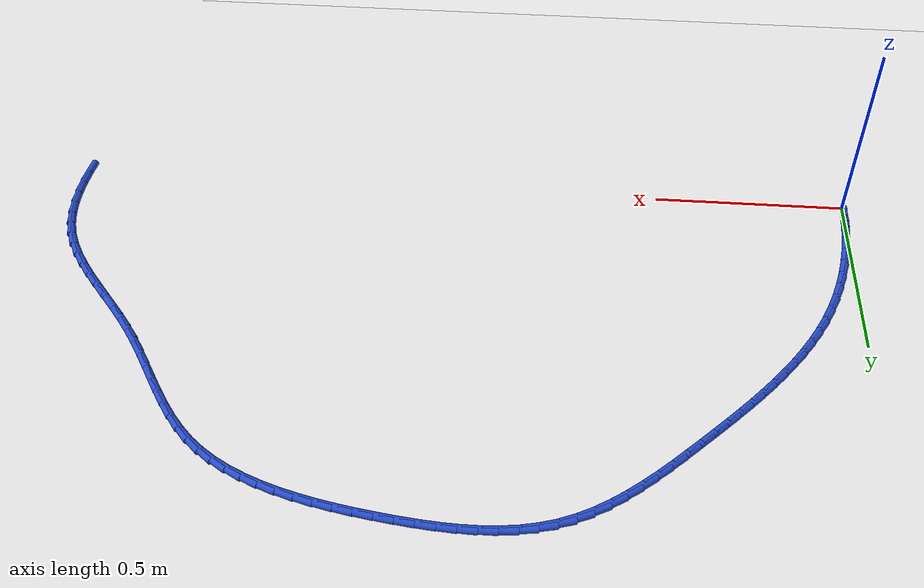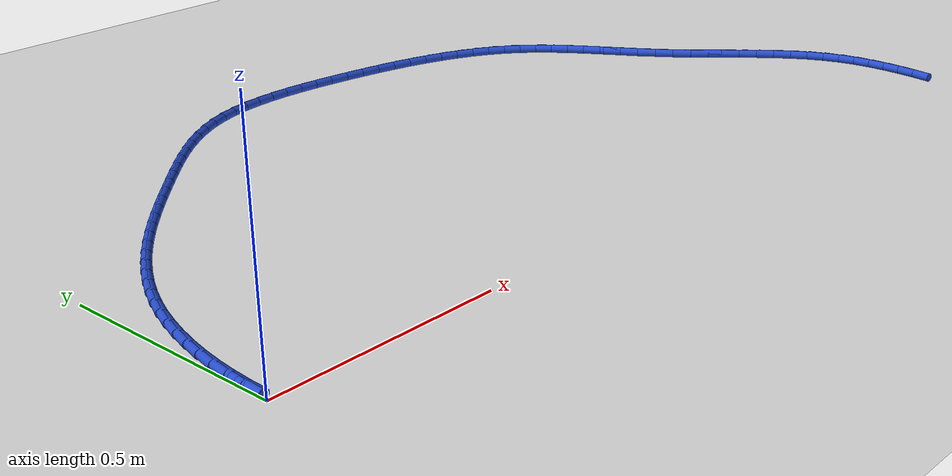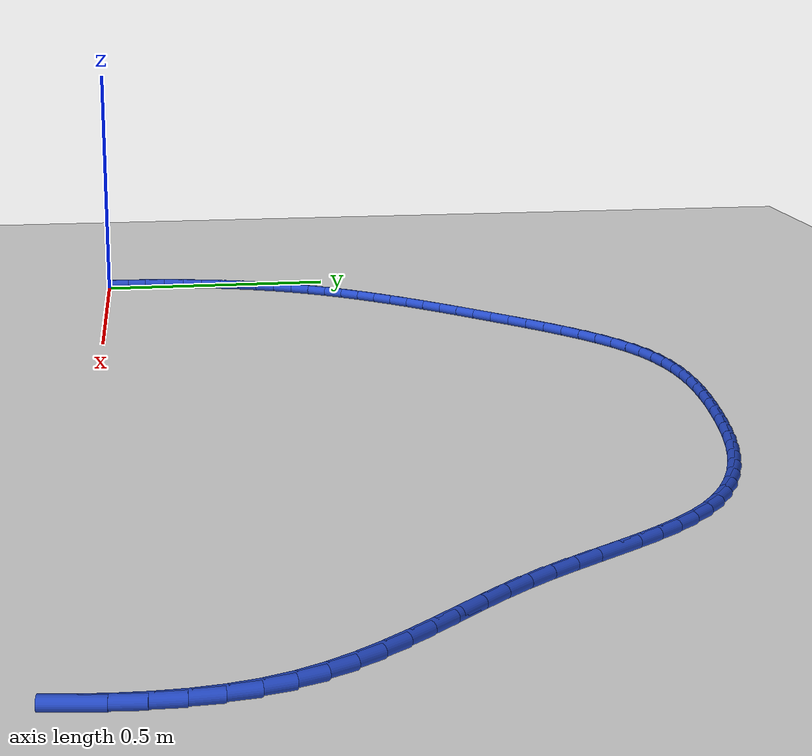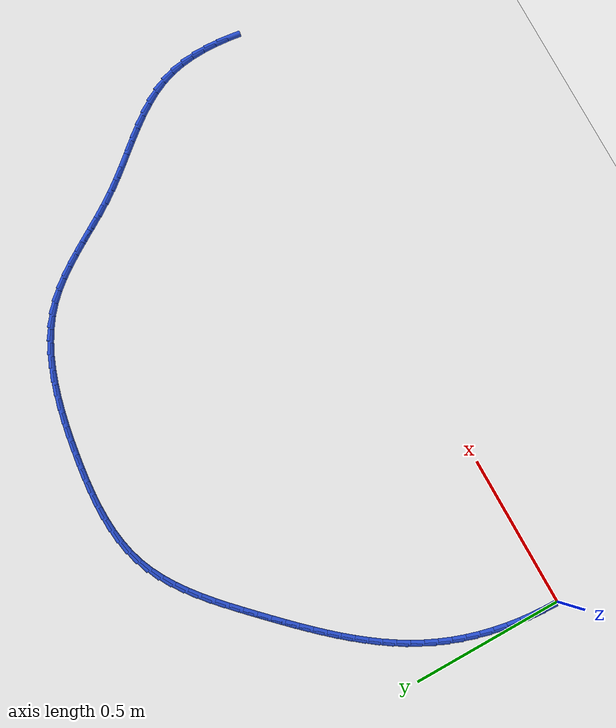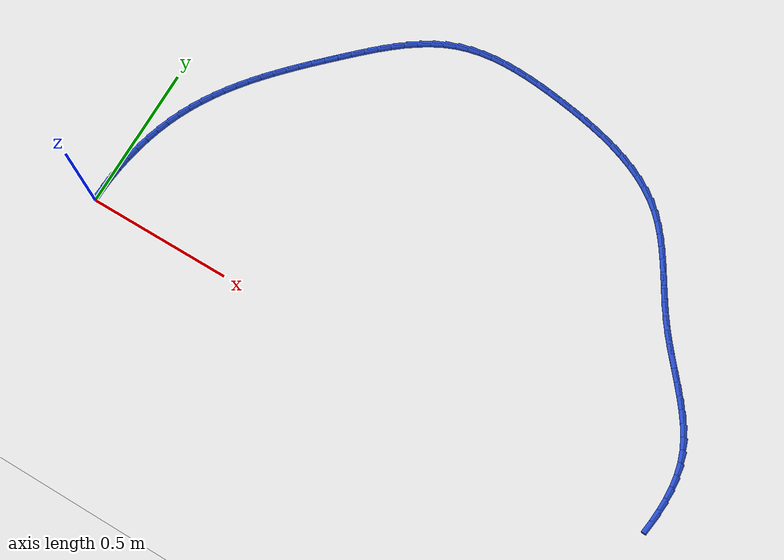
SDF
<sdf version="1.6">
 <world name="default">
  <model name="ground_plane">
   <static>1</static>
   <link name="link">
    <collision name="collision">
     <geometry><plane><normal>0 0 1</normal><size>100 100</size></plane></geometry>
     <surface><friction><ode><mu>100</mu><mu2>50</mu2></ode></friction></surface>
    </collision>
    <visual name="visual">
     <cast_shadows>0</cast_shadows>
     <geometry><plane><normal>0 0 1</normal><size>100 100</size></plane></geometry>
     <material>
      <script><uri>file://media/materials/scripts/gazebo.material</uri><name>Gazebo/WhiteGlow</name></script>
     </material>
    </visual>
   </link>
  </model>
  <model name="line">
   <link name="link_1">
    <pose>0.0009493556558560391 0.04473230480929939 0.01 0 1.57 1.5074194958298273</pose>
    <collision name="collision">
     <geometry><cylinder><radius>0.01</radius><length>0.08</length></cylinder></geometry>
    </collision>
    <visual name="visual">
     <material>
      <script><name>Gazebo/Blue</name><uri>file://media/materials/scripts/gazebo.material</uri></script>
     </material>
     <geometry><cylinder><radius>0.01</radius><length>0.08</length></cylinder></geometry>
    </visual>
   </link>
   <link name="link_2">
    <pose>0.0037793473395203838 0.08932591453530903 0.01 0 1.57 1.4645779964148935</pose>
    <collision name="collision">
     <geometry><cylinder><radius>0.01</radius><length>0.08</length></cylinder></geometry>
    </collision>
    <visual name="visual">
     <material>
      <script><name>Gazebo/Blue</name><uri>file://media/materials/scripts/gazebo.material</uri></script>
     </material>
     <geometry><cylinder><radius>0.01</radius><length>0.08</length></cylinder></geometry>
    </visual>
   </link>
   <link name="link_3">
    <pose>0.008506043564901623 0.13365825123345812 0.01 0 1.57 1.4208562728678937</pose>
    <collision name="collision">
     <geometry><cylinder><radius>0.01</radius><length>0.08</length></cylinder></geometry>
    </collision>
    <visual name="visual">
     <material>
      <script><name>Gazebo/Blue</name><uri>file://media/materials/scripts/gazebo.material</uri></script>
     </material>
     <geometry><cylinder><radius>0.01</radius><length>0.08</length></cylinder></geometry>
    </visual>
   </link>
   <link name="link_4">
    <pose>0.015145512845908388 0.1776067369591758 0.01 0 1.57 1.3760604572505393</pose>
    <collision name="collision">
     <geometry><cylinder><radius>0.01</radius><length>0.08</length></cylinder></geometry>
    </collision>
    <visual name="visual">
     <material>
      <script><name>Gazebo/Blue</name><uri>file://media/materials/scripts/gazebo.material</uri></script>
     </material>
     <geometry><cylinder><radius>0.01</radius><length>0.08</length></cylinder></geometry>
    </visual>
   </link>
   <link name="link_5">
    <pose>0.023713823696449313 0.2210487937678912 0.01 0 1.57 1.3299997670428898</pose>
    <collision name="collision">
     <geometry><cylinder><radius>0.01</radius><length>0.08</length></cylinder></geometry>
    </collision>
    <visual name="visual">
     <material>
      <script><name>Gazebo/Blue</name><uri>file://media/materials/scripts/gazebo.material</uri></script>
     </material>
     <geometry><cylinder><radius>0.01</radius><length>0.08</length></cylinder></geometry>
    </visual>
   </link>
   <link name="link_6">
    <pose>0.03422704463043302 0.26386184371503346 0.01 0 1.57 1.2824886110037068</pose>
    <collision name="collision">
     <geometry><cylinder><radius>0.01</radius><length>0.08</length></cylinder></geometry>
    </collision>
    <visual name="visual">
     <material>
      <script><name>Gazebo/Blue</name><uri>file://media/materials/scripts/gazebo.material</uri></script>
     </material>
     <geometry><cylinder><radius>0.01</radius><length>0.08</length></cylinder></geometry>
    </visual>
   </link>
   <link name="link_7">
    <pose>0.04670124416176816 0.3059233088560316 0.01 0 1.57 1.233349735007347</pose>
    <collision name="collision">
     <geometry><cylinder><radius>0.01</radius><length>0.08</length></cylinder></geometry>
    </collision>
    <visual name="visual">
     <material>
      <script><name>Gazebo/Blue</name><uri>file://media/materials/scripts/gazebo.material</uri></script>
     </material>
     <geometry><cylinder><radius>0.01</radius><length>0.08</length></cylinder></geometry>
    </visual>
   </link>
   <link name="link_8">
    <pose>0.061152490804363364 0.3471106112463149 0.01 0 1.57 1.1824185937702345</pose>
    <collision name="collision">
     <geometry><cylinder><radius>0.01</radius><length>0.08</length></cylinder></geometry>
    </collision>
    <visual name="visual">
     <material>
      <script><name>Gazebo/Blue</name><uri>file://media/materials/scripts/gazebo.material</uri></script>
     </material>
     <geometry><cylinder><radius>0.01</radius><length>0.08</length></cylinder></geometry>
    </visual>
   </link>
   <link name="link_9">
    <pose>0.07759685307212726 0.3873011729413125 0.01 0 1.57 1.1296678207322062</pose>
    <collision name="collision">
     <geometry><cylinder><radius>0.01</radius><length>0.08</length></cylinder></geometry>
    </collision>
    <visual name="visual">
     <material>
      <script><name>Gazebo/Blue</name><uri>file://media/materials/scripts/gazebo.material</uri></script>
     </material>
     <geometry><cylinder><radius>0.01</radius><length>0.08</length></cylinder></geometry>
    </visual>
   </link>
   <link name="link_10">
    <pose>0.09604696405465303 0.4263771547645984 0.01 0 1.57 1.0777235332900583</pose>
    <collision name="collision">
     <geometry><cylinder><radius>0.01</radius><length>0.08</length></cylinder></geometry>
    </collision>
    <visual name="visual">
     <material>
      <script><name>Gazebo/Blue</name><uri>file://media/materials/scripts/gazebo.material</uri></script>
     </material>
     <geometry><cylinder><radius>0.01</radius><length>0.08</length></cylinder></geometry>
    </visual>
   </link>
   <link name="link_11">
    <pose>0.11643874522814841 0.464326532285321 0.01 0 1.57 1.0294805212100286</pose>
    <collision name="collision">
     <geometry><cylinder><radius>0.01</radius><length>0.08</length></cylinder></geometry>
    </collision>
    <visual name="visual">
     <material>
      <script><name>Gazebo/Blue</name><uri>file://media/materials/scripts/gazebo.material</uri></script>
     </material>
     <geometry><cylinder><radius>0.01</radius><length>0.08</length></cylinder></geometry>
    </visual>
   </link>
   <link name="link_12">
    <pose>0.13863266457528123 0.5012413603882517 0.01 0 1.57 0.9853215591011278</pose>
    <collision name="collision">
     <geometry><cylinder><radius>0.01</radius><length>0.08</length></cylinder></geometry>
    </collision>
    <visual name="visual">
     <material>
      <script><name>Gazebo/Blue</name><uri>file://media/materials/scripts/gazebo.material</uri></script>
     </material>
     <geometry><cylinder><radius>0.01</radius><length>0.08</length></cylinder></geometry>
    </visual>
   </link>
   <link name="link_13">
    <pose>0.16248600629994367 0.5372180856105638 0.01 0 1.57 0.9454100412644546</pose>
    <collision name="collision">
     <geometry><cylinder><radius>0.01</radius><length>0.08</length></cylinder></geometry>
    </collision>
    <visual name="visual">
     <material>
      <script><name>Gazebo/Blue</name><uri>file://media/materials/scripts/gazebo.material</uri></script>
     </material>
     <geometry><cylinder><radius>0.01</radius><length>0.08</length></cylinder></geometry>
    </visual>
   </link>
   <link name="link_14">
    <pose>0.1878560546060279 0.5723531544894301 0.01 0 1.57 0.9098189130626636</pose>
    <collision name="collision">
     <geometry><cylinder><radius>0.01</radius><length>0.08</length></cylinder></geometry>
    </collision>
    <visual name="visual">
     <material>
      <script><name>Gazebo/Blue</name><uri>file://media/materials/scripts/gazebo.material</uri></script>
     </material>
     <geometry><cylinder><radius>0.01</radius><length>0.08</length></cylinder></geometry>
    </visual>
   </link>
   <link name="link_15">
    <pose>0.21460009369742594 0.6067430135620231 0.01 0 1.57 0.8785515798164789</pose>
    <collision name="collision">
     <geometry><cylinder><radius>0.01</radius><length>0.08</length></cylinder></geometry>
    </collision>
    <visual name="visual">
     <material>
      <script><name>Gazebo/Blue</name><uri>file://media/materials/scripts/gazebo.material</uri></script>
     </material>
     <geometry><cylinder><radius>0.01</radius><length>0.08</length></cylinder></geometry>
    </visual>
   </link>
   <link name="link_16">
    <pose>0.2425754077780301 0.6404841093655161 0.01 0 1.57 0.8515621695666951</pose>
    <collision name="collision">
     <geometry><cylinder><radius>0.01</radius><length>0.08</length></cylinder></geometry>
    </collision>
    <visual name="visual">
     <material>
      <script><name>Gazebo/Blue</name><uri>file://media/materials/scripts/gazebo.material</uri></script>
     </material>
     <geometry><cylinder><radius>0.01</radius><length>0.08</length></cylinder></geometry>
    </visual>
   </link>
   <link name="link_17">
    <pose>0.27163928105173246 0.6736728884370818 0.01 0 1.57 0.828773526532668</pose>
    <collision name="collision">
     <geometry><cylinder><radius>0.01</radius><length>0.08</length></cylinder></geometry>
    </collision>
    <visual name="visual">
     <material>
      <script><name>Gazebo/Blue</name><uri>file://media/materials/scripts/gazebo.material</uri></script>
     </material>
     <geometry><cylinder><radius>0.01</radius><length>0.08</length></cylinder></geometry>
    </visual>
   </link>
   <link name="link_18">
    <pose>0.30164899772242526 0.7064057973138934 0.01 0 1.57 0.8100921711703246</pose>
    <collision name="collision">
     <geometry><cylinder><radius>0.01</radius><length>0.08</length></cylinder></geometry>
    </collision>
    <visual name="visual">
     <material>
      <script><name>Gazebo/Blue</name><uri>file://media/materials/scripts/gazebo.material</uri></script>
     </material>
     <geometry><cylinder><radius>0.01</radius><length>0.08</length></cylinder></geometry>
    </visual>
   </link>
   <link name="link_19">
    <pose>0.3324618419940004 0.7387792825331232 0.01 0 1.57 0.7954200722240594</pose>
    <collision name="collision">
     <geometry><cylinder><radius>0.01</radius><length>0.08</length></cylinder></geometry>
    </collision>
    <visual name="visual">
     <material>
      <script><name>Gazebo/Blue</name><uri>file://media/materials/scripts/gazebo.material</uri></script>
     </material>
     <geometry><cylinder><radius>0.01</radius><length>0.08</length></cylinder></geometry>
    </visual>
   </link>
   <link name="link_20">
    <pose>0.36393509807035024 0.7708897906319445 0.01 0 1.57 0.7846634388693724</pose>
    <collision name="collision">
     <geometry><cylinder><radius>0.01</radius><length>0.08</length></cylinder></geometry>
    </collision>
    <visual name="visual">
     <material>
      <script><name>Gazebo/Blue</name><uri>file://media/materials/scripts/gazebo.material</uri></script>
     </material>
     <geometry><cylinder><radius>0.01</radius><length>0.08</length></cylinder></geometry>
    </visual>
   </link>
   <link name="link_21">
    <pose>0.3959260501553671 0.8028337681475304 0.01 0 1.57 0.7777389084033097</pose>
    <collision name="collision">
     <geometry><cylinder><radius>0.01</radius><length>0.08</length></cylinder></geometry>
    </collision>
    <visual name="visual">
     <material>
      <script><name>Gazebo/Blue</name><uri>file://media/materials/scripts/gazebo.material</uri></script>
     </material>
     <geometry><cylinder><radius>0.01</radius><length>0.08</length></cylinder></geometry>
    </visual>
   </link>
   <link name="link_22">
    <pose>0.42829198245294275 0.8347076616170532 0.01 0 1.57 0.7726883913819333</pose>
    <collision name="collision">
     <geometry><cylinder><radius>0.01</radius><length>0.08</length></cylinder></geometry>
    </collision>
    <visual name="visual">
     <material>
      <script><name>Gazebo/Blue</name><uri>file://media/materials/scripts/gazebo.material</uri></script>
     </material>
     <geometry><cylinder><radius>0.01</radius><length>0.08</length></cylinder></geometry>
    </visual>
   </link>
   <link name="link_23">
    <pose>0.460930610907944 0.8665269998942474 0.01 0 1.57 0.7611196370617994</pose>
    <collision name="collision">
     <geometry><cylinder><radius>0.01</radius><length>0.08</length></cylinder></geometry>
    </collision>
    <visual name="visual">
     <material>
      <script><name>Gazebo/Blue</name><uri>file://media/materials/scripts/gazebo.material</uri></script>
     </material>
     <geometry><cylinder><radius>0.01</radius><length>0.08</length></cylinder></geometry>
    </visual>
   </link>
   <link name="link_24">
    <pose>0.49391803056233474 0.8979503145093751 0.01 0 1.57 0.7405549830315604</pose>
    <collision name="collision">
     <geometry><cylinder><radius>0.01</radius><length>0.08</length></cylinder></geometry>
    </collision>
    <visual name="visual">
     <material>
      <script><name>Gazebo/Blue</name><uri>file://media/materials/scripts/gazebo.material</uri></script>
     </material>
     <geometry><cylinder><radius>0.01</radius><length>0.08</length></cylinder></geometry>
    </visual>
   </link>
   <link name="link_25">
    <pose>0.5273795141642877 0.9285377156542325 0.01 0 1.57 0.7105964394991345</pose>
    <collision name="collision">
     <geometry><cylinder><radius>0.01</radius><length>0.08</length></cylinder></geometry>
    </collision>
    <visual name="visual">
     <material>
      <script><name>Gazebo/Blue</name><uri>file://media/materials/scripts/gazebo.material</uri></script>
     </material>
     <geometry><cylinder><radius>0.01</radius><length>0.08</length></cylinder></geometry>
    </visual>
   </link>
   <link name="link_26">
    <pose>0.5614403360161417 0.9578493104102005 0.01 0 1.57 0.6706529719863801</pose>
    <collision name="collision">
     <geometry><cylinder><radius>0.01</radius><length>0.08</length></cylinder></geometry>
    </collision>
    <visual name="visual">
     <material>
      <script><name>Gazebo/Blue</name><uri>file://media/materials/scripts/gazebo.material</uri></script>
     </material>
     <geometry><cylinder><radius>0.01</radius><length>0.08</length></cylinder></geometry>
    </visual>
   </link>
   <link name="link_27">
    <pose>0.5962257704202353 0.9854452058586594 0.01 0 1.57 0.6199986322860451</pose>
    <collision name="collision">
     <geometry><cylinder><radius>0.01</radius><length>0.08</length></cylinder></geometry>
    </collision>
    <visual name="visual">
     <material>
      <script><name>Gazebo/Blue</name><uri>file://media/materials/scripts/gazebo.material</uri></script>
     </material>
     <geometry><cylinder><radius>0.01</radius><length>0.08</length></cylinder></geometry>
    </visual>
   </link>
   <link name="link_28">
    <pose>0.6318610916789068 1.0108855090809892 0.01 0 1.57 0.5578774738603502</pose>
    <collision name="collision">
     <geometry><cylinder><radius>0.01</radius><length>0.08</length></cylinder></geometry>
    </collision>
    <visual name="visual">
     <material>
      <script><name>Gazebo/Blue</name><uri>file://media/materials/scripts/gazebo.material</uri></script>
     </material>
     <geometry><cylinder><radius>0.01</radius><length>0.08</length></cylinder></geometry>
    </visual>
   </link>
   <link name="link_29">
    <pose>0.6684715740944953 1.033730327158571 0.01 0 1.57 0.4836799661511655</pose>
    <collision name="collision">
     <geometry><cylinder><radius>0.01</radius><length>0.08</length></cylinder></geometry>
    </collision>
    <visual name="visual">
     <material>
      <script><name>Gazebo/Blue</name><uri>file://media/materials/scripts/gazebo.material</uri></script>
     </material>
     <geometry><cylinder><radius>0.01</radius><length>0.08</length></cylinder></geometry>
    </visual>
   </link>
   <link name="link_30">
    <pose>0.7061824919693394 1.053539767172785 0.01 0 1.57 0.3972084316619674</pose>
    <collision name="collision">
     <geometry><cylinder><radius>0.01</radius><length>0.08</length></cylinder></geometry>
    </collision>
    <visual name="visual">
     <material>
      <script><name>Gazebo/Blue</name><uri>file://media/materials/scripts/gazebo.material</uri></script>
     </material>
     <geometry><cylinder><radius>0.01</radius><length>0.08</length></cylinder></geometry>
    </visual>
   </link>
   <link name="link_31">
    <pose>0.7451191196057775 1.0698739362050118 0.01 0 1.57 0.30150304699337</pose>
    <collision name="collision">
     <geometry><cylinder><radius>0.01</radius><length>0.08</length></cylinder></geometry>
    </collision>
    <visual name="visual">
     <material>
      <script><name>Gazebo/Blue</name><uri>file://media/materials/scripts/gazebo.material</uri></script>
     </material>
     <geometry><cylinder><radius>0.01</radius><length>0.08</length></cylinder></geometry>
    </visual>
   </link>
   <link name="link_32">
    <pose>0.7853728100791115 1.0823921854087726 0.01 0 1.57 0.21109179228786562</pose>
    <collision name="collision">
     <geometry><cylinder><radius>0.01</radius><length>0.08</length></cylinder></geometry>
    </collision>
    <visual name="visual">
     <material>
      <script><name>Gazebo/Blue</name><uri>file://media/materials/scripts/gazebo.material</uri></script>
     </material>
     <geometry><cylinder><radius>0.01</radius><length>0.08</length></cylinder></geometry>
    </visual>
   </link>
   <link name="link_33">
    <pose>0.826854710893519 1.0912810972986875 0.01 0 1.57 0.13129713475901295</pose>
    <collision name="collision">
     <geometry><cylinder><radius>0.01</radius><length>0.08</length></cylinder></geometry>
    </collision>
    <visual name="visual">
     <material>
      <script><name>Gazebo/Blue</name><uri>file://media/materials/scripts/gazebo.material</uri></script>
     </material>
     <geometry><cylinder><radius>0.01</radius><length>0.08</length></cylinder></geometry>
    </visual>
   </link>
   <link name="link_34">
    <pose>0.8694163602686742 1.096901654570277 0.01 0 1.57 0.06230407708794974</pose>
    <collision name="collision">
     <geometry><cylinder><radius>0.01</radius><length>0.08</length></cylinder></geometry>
    </collision>
    <visual name="visual">
     <material>
      <script><name>Gazebo/Blue</name><uri>file://media/materials/scripts/gazebo.material</uri></script>
     </material>
     <geometry><cylinder><radius>0.01</radius><length>0.08</length></cylinder></geometry>
    </visual>
   </link>
   <link name="link_35">
    <pose>0.9129092583957099 1.0996149511799893 0.01 0 1.57 0.0037747412302158163</pose>
    <collision name="collision">
     <geometry><cylinder><radius>0.01</radius><length>0.08</length></cylinder></geometry>
    </collision>
    <visual name="visual">
     <material>
      <script><name>Gazebo/Blue</name><uri>file://media/materials/scripts/gazebo.material</uri></script>
     </material>
     <geometry><cylinder><radius>0.01</radius><length>0.08</length></cylinder></geometry>
    </visual>
   </link>
   <link name="link_36">
    <pose>0.9571849054657594 1.0997820810842729 0.01 0 1.57 -0.04490294101807372</pose>
    <collision name="collision">
     <geometry><cylinder><radius>0.01</radius><length>0.08</length></cylinder></geometry>
    </collision>
    <visual name="visual">
     <material>
      <script><name>Gazebo/Blue</name><uri>file://media/materials/scripts/gazebo.material</uri></script>
     </material>
     <geometry><cylinder><radius>0.01</radius><length>0.08</length></cylinder></geometry>
    </visual>
   </link>
   <link name="link_37">
    <pose>1.0020948016699558 1.0977641382395769 0.01 0 1.57 -0.08443074528327679</pose>
    <collision name="collision">
     <geometry><cylinder><radius>0.01</radius><length>0.08</length></cylinder></geometry>
    </collision>
    <visual name="visual">
     <material>
      <script><name>Gazebo/Blue</name><uri>file://media/materials/scripts/gazebo.material</uri></script>
     </material>
     <geometry><cylinder><radius>0.01</radius><length>0.08</length></cylinder></geometry>
    </visual>
   </link>
   <link name="link_38">
    <pose>1.0474904471994326 1.0939222166023497 0.01 0 1.57 -0.11547934512570122</pose>
    <collision name="collision">
     <geometry><cylinder><radius>0.01</radius><length>0.08</length></cylinder></geometry>
    </collision>
    <visual name="visual">
     <material>
      <script><name>Gazebo/Blue</name><uri>file://media/materials/scripts/gazebo.material</uri></script>
     </material>
     <geometry><cylinder><radius>0.01</radius><length>0.08</length></cylinder></geometry>
    </visual>
   </link>
   <link name="link_39">
    <pose>1.0932233422453226 1.0886174101290398 0.01 0 1.57 -0.13863119221207096</pose>
    <collision name="collision">
     <geometry><cylinder><radius>0.01</radius><length>0.08</length></cylinder></geometry>
    </collision>
    <visual name="visual">
     <material>
      <script><name>Gazebo/Blue</name><uri>file://media/materials/scripts/gazebo.material</uri></script>
     </material>
     <geometry><cylinder><radius>0.01</radius><length>0.08</length></cylinder></geometry>
    </visual>
   </link>
   <link name="link_40">
    <pose>1.139144859240316 1.0822101566301021 0.01 0 1.57 -0.15773992628443598</pose>
    <collision name="collision">
     <geometry><cylinder><radius>0.01</radius><length>0.08</length></cylinder></geometry>
    </collision>
    <visual name="visual">
     <material>
      <script><name>Gazebo/Blue</name><uri>file://media/materials/scripts/gazebo.material</uri></script>
     </material>
     <geometry><cylinder><radius>0.01</radius><length>0.08</length></cylinder></geometry>
    </visual>
   </link>
   <link name="link_41">
    <pose>1.1850758812078432 1.0749043054100256 0.01 0 1.57 -0.18094231287844695</pose>
    <collision name="collision">
     <geometry><cylinder><radius>0.01</radius><length>0.08</length></cylinder></geometry>
    </collision>
    <visual name="visual">
     <material>
      <script><name>Gazebo/Blue</name><uri>file://media/materials/scripts/gazebo.material</uri></script>
     </material>
     <geometry><cylinder><radius>0.01</radius><length>0.08</length></cylinder></geometry>
    </visual>
   </link>
   <link name="link_42">
    <pose>1.2307675120178925 1.0665453317132585 0.01 0 1.57 -0.20965833708193293</pose>
    <collision name="collision">
     <geometry><cylinder><radius>0.01</radius><length>0.08</length></cylinder></geometry>
    </collision>
    <visual name="visual">
     <material>
      <script><name>Gazebo/Blue</name><uri>file://media/materials/scripts/gazebo.material</uri></script>
     </material>
     <geometry><cylinder><radius>0.01</radius><length>0.08</length></cylinder></geometry>
    </visual>
   </link>
   <link name="link_43">
    <pose>1.2759611361246872 1.0569287934906524 0.01 0 1.57 -0.24432821090702156</pose>
    <collision name="collision">
     <geometry><cylinder><radius>0.01</radius><length>0.08</length></cylinder></geometry>
    </collision>
    <visual name="visual">
     <material>
      <script><name>Gazebo/Blue</name><uri>file://media/materials/scripts/gazebo.material</uri></script>
     </material>
     <geometry><cylinder><radius>0.01</radius><length>0.08</length></cylinder></geometry>
    </visual>
   </link>
   <link name="link_44">
    <pose>1.32039813798245 1.0458502486930576 0.01 0 1.57 -0.28549783791102956</pose>
    <collision name="collision">
     <geometry><cylinder><radius>0.01</radius><length>0.08</length></cylinder></geometry>
    </collision>
    <visual name="visual">
     <material>
      <script><name>Gazebo/Blue</name><uri>file://media/materials/scripts/gazebo.material</uri></script>
     </material>
     <geometry><cylinder><radius>0.01</radius><length>0.08</length></cylinder></geometry>
    </visual>
   </link>
   <link name="link_45">
    <pose>1.3638199020454056 1.0331052552713258 0.01 0 1.57 -0.33379978116029424</pose>
    <collision name="collision">
     <geometry><cylinder><radius>0.01</radius><length>0.08</length></cylinder></geometry>
    </collision>
    <visual name="visual">
     <material>
      <script><name>Gazebo/Blue</name><uri>file://media/materials/scripts/gazebo.material</uri></script>
     </material>
     <geometry><cylinder><radius>0.01</radius><length>0.08</length></cylinder></geometry>
    </visual>
   </link>
   <link name="link_46">
    <pose>1.4059678127677755 1.0184893711763083 0.01 0 1.57 -0.3899165864248529</pose>
    <collision name="collision">
     <geometry><cylinder><radius>0.01</radius><length>0.08</length></cylinder></geometry>
    </collision>
    <visual name="visual">
     <material>
      <script><name>Gazebo/Blue</name><uri>file://media/materials/scripts/gazebo.material</uri></script>
     </material>
     <geometry><cylinder><radius>0.01</radius><length>0.08</length></cylinder></geometry>
    </visual>
   </link>
   <link name="link_47">
    <pose>1.446583254603784 1.001798154358856 0.01 0 1.57 -0.4545154171378272</pose>
    <collision name="collision">
     <geometry><cylinder><radius>0.01</radius><length>0.08</length></cylinder></geometry>
    </collision>
    <visual name="visual">
     <material>
      <script><name>Gazebo/Blue</name><uri>file://media/materials/scripts/gazebo.material</uri></script>
     </material>
     <geometry><cylinder><radius>0.01</radius><length>0.08</length></cylinder></geometry>
    </visual>
   </link>
   <link name="link_48">
    <pose>1.485407612007653 0.9828271627698199 0.01 0 1.57 -0.5281419042610613</pose>
    <collision name="collision">
     <geometry><cylinder><radius>0.01</radius><length>0.08</length></cylinder></geometry>
    </collision>
    <visual name="visual">
     <material>
      <script><name>Gazebo/Blue</name><uri>file://media/materials/scripts/gazebo.material</uri></script>
     </material>
     <geometry><cylinder><radius>0.01</radius><length>0.08</length></cylinder></geometry>
    </visual>
   </link>
   <link name="link_49">
    <pose>1.5221822694336062 0.9613719543600509 0.01 0 1.57 -0.6110652470176426</pose>
    <collision name="collision">
     <geometry><cylinder><radius>0.01</radius><length>0.08</length></cylinder></geometry>
    </collision>
    <visual name="visual">
     <material>
      <script><name>Gazebo/Blue</name><uri>file://media/materials/scripts/gazebo.material</uri></script>
     </material>
     <geometry><cylinder><radius>0.01</radius><length>0.08</length></cylinder></geometry>
    </visual>
   </link>
   <link name="link_50">
    <pose>1.5566486113358675 0.9372280870804003 0.01 0 1.57 -0.7030805078337105</pose>
    <collision name="collision">
     <geometry><cylinder><radius>0.01</radius><length>0.08</length></cylinder></geometry>
    </collision>
    <visual name="visual">
     <material>
      <script><name>Gazebo/Blue</name><uri>file://media/materials/scripts/gazebo.material</uri></script>
     </material>
     <geometry><cylinder><radius>0.01</radius><length>0.08</length></cylinder></geometry>
    </visual>
   </link>
   <link name="link_51">
    <pose>1.588548049117006 0.9101911421825237 0.01 0 1.57 -0.798433416173682</pose>
    <collision name="collision">
     <geometry><cylinder><radius>0.01</radius><length>0.08</length></cylinder></geometry>
    </collision>
    <visual name="visual">
     <material>
      <script><name>Gazebo/Blue</name><uri>file://media/materials/scripts/gazebo.material</uri></script>
     </material>
     <geometry><cylinder><radius>0.01</radius><length>0.08</length></cylinder></geometry>
    </visual>
   </link>
   <link name="link_52">
    <pose>1.6177766525851347 0.8801904258263135 0.01 0 1.57 -0.8793918547365092</pose>
    <collision name="collision">
     <geometry><cylinder><radius>0.01</radius><length>0.08</length></cylinder></geometry>
    </collision>
    <visual name="visual">
     <material>
      <script><name>Gazebo/Blue</name><uri>file://media/materials/scripts/gazebo.material</uri></script>
     </material>
     <geometry><cylinder><radius>0.01</radius><length>0.08</length></cylinder></geometry>
    </visual>
   </link>
   <link name="link_53">
    <pose>1.6447488793283103 0.8476034665496271 0.01 0 1.57 -0.9419798324300654</pose>
    <collision name="collision">
     <geometry><cylinder><radius>0.01</radius><length>0.08</length></cylinder></geometry>
    </collision>
    <visual name="visual">
     <material>
      <script><name>Gazebo/Blue</name><uri>file://media/materials/scripts/gazebo.material</uri></script>
     </material>
     <geometry><cylinder><radius>0.01</radius><length>0.08</length></cylinder></geometry>
    </visual>
   </link>
   <link name="link_54">
    <pose>1.6699876749960751 0.812901596754496 0.01 0 1.57 -0.9866510703602411</pose>
    <collision name="collision">
     <geometry><cylinder><radius>0.01</radius><length>0.08</length></cylinder></geometry>
    </collision>
    <visual name="visual">
     <material>
      <script><name>Gazebo/Blue</name><uri>file://media/materials/scripts/gazebo.material</uri></script>
     </material>
     <geometry><cylinder><radius>0.01</radius><length>0.08</length></cylinder></geometry>
    </visual>
   </link>
   <link name="link_55">
    <pose>1.6940159852379704 0.7765561488429531 0.01 0 1.57 -1.014265651700936</pose>
    <collision name="collision">
     <geometry><cylinder><radius>0.01</radius><length>0.08</length></cylinder></geometry>
    </collision>
    <visual name="visual">
     <material>
      <script><name>Gazebo/Blue</name><uri>file://media/materials/scripts/gazebo.material</uri></script>
     </material>
     <geometry><cylinder><radius>0.01</radius><length>0.08</length></cylinder></geometry>
    </visual>
   </link>
   <link name="link_56">
    <pose>1.7173567557035383 0.7390384552170293 0.01 0 1.57 -1.0256763257706387</pose>
    <collision name="collision">
     <geometry><cylinder><radius>0.01</radius><length>0.08</length></cylinder></geometry>
    </collision>
    <visual name="visual">
     <material>
      <script><name>Gazebo/Blue</name><uri>file://media/materials/scripts/gazebo.material</uri></script>
     </material>
     <geometry><cylinder><radius>0.01</radius><length>0.08</length></cylinder></geometry>
    </visual>
   </link>
   <link name="link_57">
    <pose>1.7405329320423215 0.7008198482787569 0.01 0 1.57 -1.021519822923509</pose>
    <collision name="collision">
     <geometry><cylinder><radius>0.01</radius><length>0.08</length></cylinder></geometry>
    </collision>
    <visual name="visual">
     <material>
      <script><name>Gazebo/Blue</name><uri>file://media/materials/scripts/gazebo.material</uri></script>
     </material>
     <geometry><cylinder><radius>0.01</radius><length>0.08</length></cylinder></geometry>
    </visual>
   </link>
   <link name="link_58">
    <pose>1.7640674599038613 0.6623716604301668 0.01 0 1.57 -1.0021573415300908</pose>
    <collision name="collision">
     <geometry><cylinder><radius>0.01</radius><length>0.08</length></cylinder></geometry>
    </collision>
    <visual name="visual">
     <material>
      <script><name>Gazebo/Blue</name><uri>file://media/materials/scripts/gazebo.material</uri></script>
     </material>
     <geometry><cylinder><radius>0.01</radius><length>0.08</length></cylinder></geometry>
    </visual>
   </link>
   <link name="link_59">
    <pose>1.788483284937699 0.6241652240732917 0.01 0 1.57 -0.9677253586184543</pose>
    <collision name="collision">
     <geometry><cylinder><radius>0.01</radius><length>0.08</length></cylinder></geometry>
    </collision>
    <visual name="visual">
     <material>
      <script><name>Gazebo/Blue</name><uri>file://media/materials/scripts/gazebo.material</uri></script>
     </material>
     <geometry><cylinder><radius>0.01</radius><length>0.08</length></cylinder></geometry>
    </visual>
   </link>
   <link name="link_60">
    <pose>1.8143032847248628 0.5866718293719743 0.01 0 1.57 -0.9246000153751803</pose>
    <collision name="collision">
     <geometry><cylinder><radius>0.01</radius><length>0.08</length></cylinder></geometry>
    </collision>
    <visual name="visual">
     <material>
      <script><name>Gazebo/Blue</name><uri>file://media/materials/scripts/gazebo.material</uri></script>
     </material>
     <geometry><cylinder><radius>0.01</radius><length>0.08</length></cylinder></geometry>
    </visual>
   </link>
   <link name="link_61">
    <pose>1.8418037188357868 0.5502097339435496 0.01 0 1.57 -0.8931862985490858</pose>
    <collision name="collision">
     <geometry><cylinder><radius>0.01</radius><length>0.08</length></cylinder></geometry>
    </collision>
    <visual name="visual">
     <material>
      <script><name>Gazebo/Blue</name><uri>file://media/materials/scripts/gazebo.material</uri></script>
     </material>
     <geometry><cylinder><radius>0.01</radius><length>0.08</length></cylinder></geometry>
    </visual>
   </link>
   <link name="link_62">
    <pose>1.8704594964993393 0.5145999377917664 0.01 0 1.57 -0.8773095075462517</pose>
    <collision name="collision">
     <geometry><cylinder><radius>0.01</radius><length>0.08</length></cylinder></geometry>
    </collision>
    <visual name="visual">
     <material>
      <script><name>Gazebo/Blue</name><uri>file://media/materials/scripts/gazebo.material</uri></script>
     </material>
     <geometry><cylinder><radius>0.01</radius><length>0.08</length></cylinder></geometry>
    </visual>
   </link>
   <link name="link_63">
    <pose>1.899583044211797 0.4795626163850056 0.01 0 1.57 -0.8769104631869721</pose>
    <collision name="collision">
     <geometry><cylinder><radius>0.01</radius><length>0.08</length></cylinder></geometry>
    </collision>
    <visual name="visual">
     <material>
      <script><name>Gazebo/Blue</name><uri>file://media/materials/scripts/gazebo.material</uri></script>
     </material>
     <geometry><cylinder><radius>0.01</radius><length>0.08</length></cylinder></geometry>
    </visual>
   </link>
   <link name="link_64">
    <pose>1.9284867884694412 0.44481794519164725 0.01 0 1.57 -0.8923639116627092</pose>
    <collision name="collision">
     <geometry><cylinder><radius>0.01</radius><length>0.08</length></cylinder></geometry>
    </collision>
    <visual name="visual">
     <material>
      <script><name>Gazebo/Blue</name><uri>file://media/materials/scripts/gazebo.material</uri></script>
     </material>
     <geometry><cylinder><radius>0.01</radius><length>0.08</length></cylinder></geometry>
    </visual>
   </link>
   <link name="link_65">
    <pose>1.9564831557685498 0.410086099680072 0.01 0 1.57 -0.924516323252132</pose>
    <collision name="collision">
     <geometry><cylinder><radius>0.01</radius><length>0.08</length></cylinder></geometry>
    </collision>
    <visual name="visual">
     <material>
      <script><name>Gazebo/Blue</name><uri>file://media/materials/scripts/gazebo.material</uri></script>
     </material>
     <geometry><cylinder><radius>0.01</radius><length>0.08</length></cylinder></geometry>
    </visual>
   </link>
   <link name="link_66">
    <pose>1.9828845726054034 0.3750872553186605 0.01 0 1.57 -0.9746238010650542</pose>
    <collision name="collision">
     <geometry><cylinder><radius>0.01</radius><length>0.08</length></cylinder></geometry>
    </collision>
    <visual name="visual">
     <material>
      <script><name>Gazebo/Blue</name><uri>file://media/materials/scripts/gazebo.material</uri></script>
     </material>
     <geometry><cylinder><radius>0.01</radius><length>0.08</length></cylinder></geometry>
    </visual>
   </link>
   <link name="link_67">
    <pose>2.00700346547628 0.33954158757579267 0.01 0 1.57 -1.0441259007853316</pose>
    <collision name="collision">
     <geometry><cylinder><radius>0.01</radius><length>0.08</length></cylinder></geometry>
    </collision>
    <visual name="visual">
     <material>
      <script><name>Gazebo/Blue</name><uri>file://media/materials/scripts/gazebo.material</uri></script>
     </material>
     <geometry><cylinder><radius>0.01</radius><length>0.08</length></cylinder></geometry>
    </visual>
   </link>
   <link name="link_68">
    <pose>2.0281522608774587 0.3031692719198498 0.01 0 1.57 -1.1341467461948769</pose>
    <collision name="collision">
     <geometry><cylinder><radius>0.01</radius><length>0.08</length></cylinder></geometry>
    </collision>
    <visual name="visual">
     <material>
      <script><name>Gazebo/Blue</name><uri>file://media/materials/scripts/gazebo.material</uri></script>
     </material>
     <geometry><cylinder><radius>0.01</radius><length>0.08</length></cylinder></geometry>
    </visual>
   </link>
   <link name="link_69">
    <pose>2.0456433853052194 0.26569048381921223 0.01 0 1.57 -1.2434907560272814</pose>
    <collision name="collision">
     <geometry><cylinder><radius>0.01</radius><length>0.08</length></cylinder></geometry>
    </collision>
    <visual name="visual">
     <material>
      <script><name>Gazebo/Blue</name><uri>file://media/materials/scripts/gazebo.material</uri></script>
     </material>
     <geometry><cylinder><radius>0.01</radius><length>0.08</length></cylinder></geometry>
    </visual>
   </link>
   <link name="link_70">
    <pose>2.0588330752010413 0.22684210070071997 0.01 0 1.57 -1.353787744480869</pose>
    <collision name="collision">
     <geometry><cylinder><radius>0.01</radius><length>0.08</length></cylinder></geometry>
    </collision>
    <visual name="visual">
     <material>
      <script><name>Gazebo/Blue</name><uri>file://media/materials/scripts/gazebo.material</uri></script>
     </material>
     <geometry><cylinder><radius>0.01</radius><length>0.08</length></cylinder></geometry>
    </visual>
   </link>
   <link name="link_71">
    <pose>2.067705580915384 0.18660042193461115 0.01 0 1.57 -1.4506123841829117</pose>
    <collision name="collision">
     <geometry><cylinder><radius>0.01</radius><length>0.08</length></cylinder></geometry>
    </collision>
    <visual name="visual">
     <material>
      <script><name>Gazebo/Blue</name><uri>file://media/materials/scripts/gazebo.material</uri></script>
     </material>
     <geometry><cylinder><radius>0.01</radius><length>0.08</length></cylinder></geometry>
    </visual>
   </link>
   <link name="link_72">
    <pose>2.0727149032273884 0.14512083298927994 0.01 0 1.57 -1.5329492440120065</pose>
    <collision name="collision">
     <geometry><cylinder><radius>0.01</radius><length>0.08</length></cylinder></geometry>
    </collision>
    <visual name="visual">
     <material>
      <script><name>Gazebo/Blue</name><uri>file://media/materials/scripts/gazebo.material</uri></script>
     </material>
     <geometry><cylinder><radius>0.01</radius><length>0.08</length></cylinder></geometry>
    </visual>
   </link>
   <link name="link_73">
    <pose>2.074326361249427 0.10256303429700687 0.01 0 1.57 1.5404193044401566</pose>
    <collision name="collision">
     <geometry><cylinder><radius>0.01</radius><length>0.08</length></cylinder></geometry>
    </collision>
    <visual name="visual">
     <material>
      <script><name>Gazebo/Blue</name><uri>file://media/materials/scripts/gazebo.material</uri></script>
     </material>
     <geometry><cylinder><radius>0.01</radius><length>0.08</length></cylinder></geometry>
    </visual>
   </link>
   <link name="link_74">
    <pose>2.0730052740938687 0.059086726290073055 0.01 0 1.57 1.4853643778064614</pose>
    <collision name="collision">
     <geometry><cylinder><radius>0.01</radius><length>0.08</length></cylinder></geometry>
    </collision>
    <visual name="visual">
     <material>
      <script><name>Gazebo/Blue</name><uri>file://media/materials/scripts/gazebo.material</uri></script>
     </material>
     <geometry><cylinder><radius>0.01</radius><length>0.08</length></cylinder></geometry>
    </visual>
   </link>
   <link name="link_75">
    <pose>2.0692169608730864 0.014851609400759448 0.01 0 1.57 1.4423599203762099</pose>
    <collision name="collision">
     <geometry><cylinder><radius>0.01</radius><length>0.08</length></cylinder></geometry>
    </collision>
    <visual name="visual">
     <material>
      <script><name>Gazebo/Blue</name><uri>file://media/materials/scripts/gazebo.material</uri></script>
     </material>
     <geometry><cylinder><radius>0.01</radius><length>0.08</length></cylinder></geometry>
    </visual>
   </link>
   <link name="link_151">
    <pose>0.0009436800819755849 0.04473060713559362 0.01 0 1.57 1.5497024902748944</pose>
    <collision name="collision">
     <geometry><cylinder><radius>0.01</radius><length>0.08</length></cylinder></geometry>
    </collision>
    <visual name="visual">
     <material>
      <script><name>Gazebo/Blue</name><uri>file://media/materials/scripts/gazebo.material</uri></script>
     </material>
     <geometry><cylinder><radius>0.01</radius><length>0.08</length></cylinder></geometry>
    </visual>
   </link>
  </model>
 </world>
</sdf>
